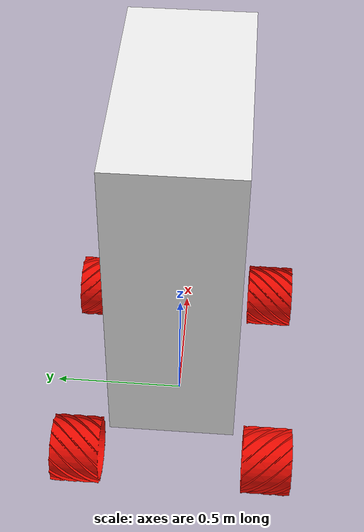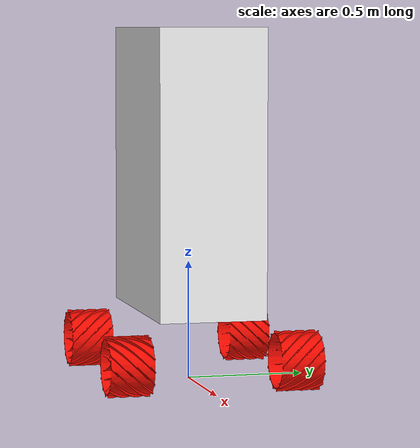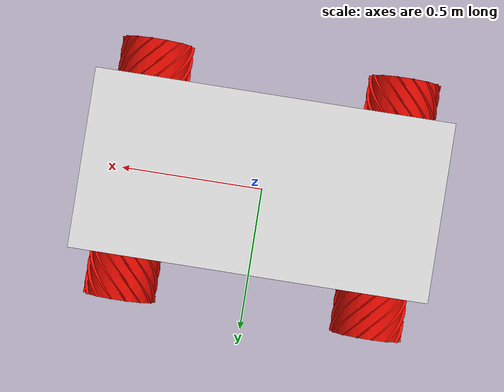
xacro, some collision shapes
<?xml version="1.0" ?>
<robot name="kanga_core_simple" xmlns:xacro="http://www.ros.org/wiki/xacro">
  <!-- Wrapper file:
       include the reusable core macro and instantiate it as a standalone model. -->
  <xacro:include filename="$(find kanga_description)/urdf/core/kanga_core_simple_macro.urdf.xacro"/>

  <xacro:kanga_core_simple/>
</robot>

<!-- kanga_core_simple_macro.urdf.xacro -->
<robot name="kanga_core_simple_macro" xmlns:xacro="http://www.ros.org/wiki/xacro">
  <!-- Reusable rover core model.
       This macro defines the complete base chassis, payload mount frames, and wheels.
       Params:
       - prefix: optional name prefix to avoid link/joint collisions -->
  <xacro:macro name="kanga_core_simple" params="prefix:=''">
  <!-- Base/root frame for full rover assemblies. -->
  <link name="${prefix}base_link"/>

  <joint name="${prefix}base_link_to_kanga_core_simple" type="fixed">
    <parent link="${prefix}base_link"/>
    <child link="${prefix}kanga_core_simple"/>
    <origin xyz="0.0 0.0 0.39697" rpy="0 0 0"/>
  </joint>
  <!-- Main chassis body geometry + inertial properties. -->
  <link name="${prefix}kanga_core_simple">
    <inertial>
      <origin xyz="-0.0394422 -0.0149606 -0.0298892" rpy="0 0 0"/>
      <mass value="28"/>
      <inertia ixx="3.05326" ixy="-0.0953345" ixz="0.403632" iyy="4.37258" iyz="0.249778" izz="3.81615"/>
    </inertial>
    <!-- Part kangacore -->
    <visual>
      <origin xyz="-0.0406693 -0 0" rpy="0 -0 1.5708"/>
      <geometry>
        <mesh filename="package://kanga_description/meshes/core/kangacore.stl"/>
      </geometry>
      <material name="kangacore_material">
        <color rgba="0.917647 0.917647 0.917647 1"/>
      </material>
    </visual>
    <collision>
      <origin xyz="0.0 -0 0.5" rpy="0 -0 1.5708"/>
      <geometry>
        <box size="0.45 0.9 1.2"/>
      </geometry>
    </collision>

    <collision>
      <origin xyz="0 0.32 -0.2" rpy="0 -0 1.5708"/>
      <geometry>
        <box size="0.3 1.3 0.6"/>
      </geometry>
    </collision>

    <collision>
      <origin xyz="0 -0.32 -0.2" rpy="0 -0 1.5708"/>
      <geometry>
        <box size="0.3 1.3 0.6"/>
      </geometry>
    </collision>

  </link>
  <!-- Top payload interface frame used by payload assemblies. -->
  <link name="${prefix}top_payload_mount">
    <inertial>
      <origin xyz="0 0 0" rpy="0 0 0"/>
      <mass value="1e-9"/>
      <inertia ixx="0" ixy="0" ixz="0" iyy="0" iyz="0" izz="0"/>
    </inertial>
  </link>
  <joint name="${prefix}top_payload_mount_frame" type="fixed">
    <origin xyz="0.379844 -0.1575 0.1216" rpy="0 -0 0"/>
    <parent link="${prefix}kanga_core_simple"/>
    <child link="${prefix}top_payload_mount"/>
    <axis xyz="0 0 0"/>
  </joint>
  <!-- Front payload interface frame used by payload assemblies. -->
  <link name="${prefix}front_payload_mount">
    <inertial>
      <origin xyz="0 0 0" rpy="0 0 0"/>
      <mass value="1e-9"/>
      <inertia ixx="0" ixy="0" ixz="0" iyy="0" iyz="0" izz="0"/>
    </inertial>
  </link>
  <joint name="${prefix}front_payload_mount_frame" type="fixed">
    <origin xyz="0.158499 -0 0.0116" rpy="0 -0 0"/>
    <parent link="${prefix}kanga_core_simple"/>
    <child link="${prefix}front_payload_mount"/>
    <axis xyz="0 0 0"/>
  </joint>
  <!-- Drive wheel links and joints. -->
  <!-- Link wheel_fl -->
  <link name="${prefix}wheel_fl">
    <inertial>
      <origin xyz="8.20141e-07 4.19108e-07 0.0294338" rpy="0 0 0"/>
      <mass value="0.7"/>
      <inertia ixx="0.00536519" ixy="2.6367e-08" ixz="3.55462e-07" iyy="0.00536521" iyz="7.378e-09" izz="0.00759451"/>
    </inertial>
    <!-- Part wheelb -->
    <visual>
      <origin xyz="0 0 -0.05" rpy="-1.5708 -0 0"/>
      <geometry>
        <mesh filename="package://kanga_description/meshes/core/wheelb.stl"/>
      </geometry>
      <material name="wheelb_material">
        <color rgba="0.929412 0.0392157 0 1"/>
      </material>
    </visual>
    <collision>
      <origin xyz="0 0 0.08" rpy="0 0 0"/>
      <geometry>
        <cylinder radius="0.126" length="0.3"/>
      </geometry>
    </collision>
  </link>
  <!-- Joint from kanga_core_simple to wheel_fl -->
  <joint name="${prefix}wheel_fl_joint" type="continuous">
    <origin xyz="0.428413 0.395775 -0.271989" rpy="1.5708 0 0"/>
    <parent link="${prefix}kanga_core_simple"/>
    <child link="${prefix}wheel_fl"/>
    <axis xyz="0 0 1"/>
    <limit effort="40" velocity="4.61"/>
  </joint>
  <!-- Link wheel_bl -->
  <link name="${prefix}wheel_bl">
    <inertial>
      <origin xyz="1.69548e-06 -4.25166e-07 0.0294802" rpy="0 0 0"/>
      <mass value="0.7"/>
      <inertia ixx="0.0053658" ixy="2.7862e-08" ixz="3.79976e-07" iyy="0.00536582" iyz="-5.263e-09" izz="0.00759416"/>
    </inertial>
    <!-- Part wheel_a -->
    <visual>
      <origin xyz="0 0 -0.05" rpy="-1.5708 0 0"/>
      <geometry>
        <mesh filename="package://kanga_description/meshes/core/wheel_a.stl"/>
      </geometry>
      <material name="wheel_a_material">
        <color rgba="0.929412 0.0392157 0 1"/>
      </material>
    </visual>
    <collision>
      <origin xyz="0 0 0.08" rpy="0 0 0"/>
      <geometry>
        <cylinder radius="0.126" length="0.3"/>
      </geometry>
    </collision>
  </link>
  <!-- Joint from kanga_core_simple to wheel_bl -->
  <joint name="${prefix}wheel_bl_joint" type="continuous">
    <origin xyz="-0.430143 0.395775 -0.272479" rpy="1.5708 0 -0"/>
    <parent link="${prefix}kanga_core_simple"/>
    <child link="${prefix}wheel_bl"/>
    <axis xyz="0 0 1"/>
    <limit effort="40" velocity="4.61"/>
  </joint>
  <!-- Link wheel_br -->
  <link name="${prefix}wheel_br">
    <inertial>
      <origin xyz="8.20141e-07 4.19108e-07 0.0294338" rpy="0 0 0"/>
      <mass value="0.7"/>
      <inertia ixx="0.00536519" ixy="2.6367e-08" ixz="3.55462e-07" iyy="0.00536521" iyz="7.378e-09" izz="0.00759451"/>
    </inertial>
    <!-- Part wheelb_2 -->
    <visual>
      <origin xyz="0 0 -0.05" rpy="-1.5708 0 0"/>
      <geometry>
        <mesh filename="package://kanga_description/meshes/core/wheelb.stl"/>
      </geometry>
      <material name="wheelb_2_material">
        <color rgba="0.929412 0.0392157 0 1"/>
      </material>
    </visual>
    <collision>
      <origin xyz="0 0 0.08" rpy="0 0 0"/>
      <geometry>
        <cylinder radius="0.126" length="0.3"/>
      </geometry>
    </collision>
  </link>
  <!-- Joint from kanga_core_simple to wheel_br -->
  <joint name="${prefix}wheel_br_joint" type="continuous">
    <origin xyz="-0.430143 -0.395725 -0.272479" rpy="1.5708 0 -3.14159"/>
    <parent link="${prefix}kanga_core_simple"/>
    <child link="${prefix}wheel_br"/>
    <axis xyz="0 0 1"/>
    <limit effort="40" velocity="4.61"/>
  </joint>
  <!-- Link wheel_fr -->
  <link name="${prefix}wheel_fr">
    <inertial>
      <origin xyz="1.69548e-06 -4.25166e-07 0.0294802" rpy="0 0 0"/>
      <mass value="0.7"/>
      <inertia ixx="0.0053658" ixy="2.7862e-08" ixz="3.79976e-07" iyy="0.00536582" iyz="-5.263e-09" izz="0.00759416"/>
    </inertial>
    <!-- Part wheel_a_2 -->
    <visual>
      <origin xyz="0 0 -0.05" rpy="-1.5708 -0 0"/>
      <geometry>
        <mesh filename="package://kanga_description/meshes/core/wheel_a.stl"/>
      </geometry>
      <material name="wheel_a_2_material">
        <color rgba="0.929412 0.0392157 0 1"/>
      </material>
    </visual>
    <collision>
      <origin xyz="0 0 0.08" rpy="0 0 0"/>
      <geometry>
        <cylinder radius="0.126" length="0.3"/>
      </geometry>
    </collision>
  </link>
  <!-- Joint from kanga_core_simple to wheel_fr -->
  <joint name="${prefix}wheel_fr_joint" type="continuous">
    <origin xyz="0.428413 -0.395725 -0.271989" rpy="1.5708 -0 -3.14159"/>
    <parent link="${prefix}kanga_core_simple"/>
    <child link="${prefix}wheel_fr"/>
    <axis xyz="0 0 1"/>
    <limit effort="40" velocity="4.61"/>
  </joint>
  </xacro:macro>
</robot>
